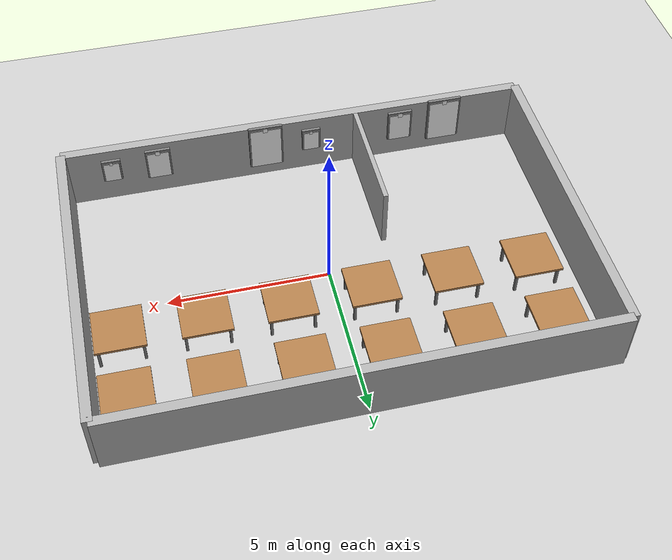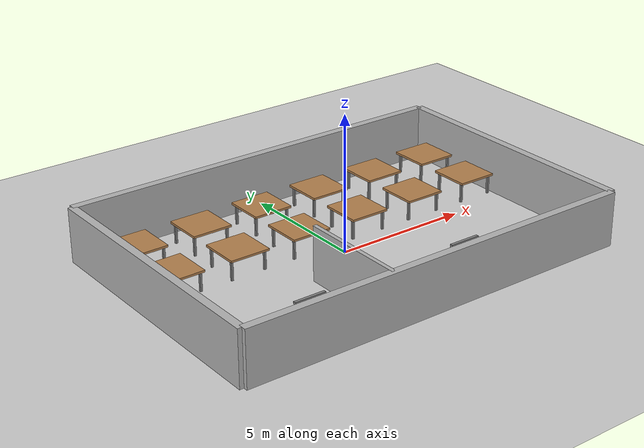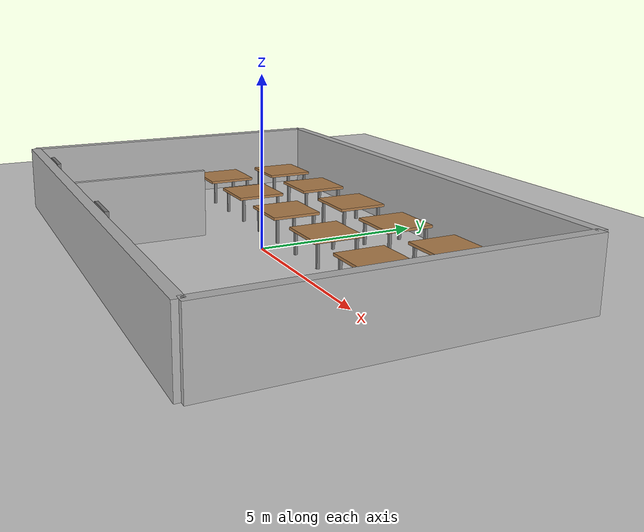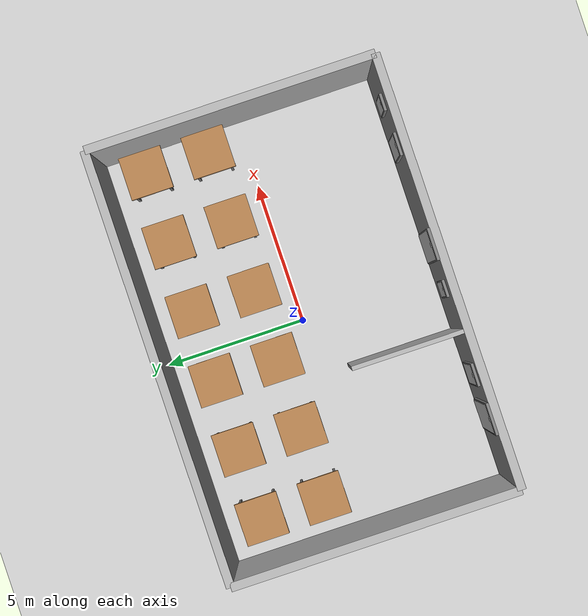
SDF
<?xml version="1.0" ?>
<sdf version="1.6">
  <world name="challenging_cafeteria">

    <!-- Sun -->
    <light type="directional" name="sun">
        <cast_shadows>true</cast_shadows>
        <pose>0 0 10 0 0 0</pose>
        <diffuse>0.8 0.8 0.8 1</diffuse>
        <direction>-0.5 0.1 -0.9</direction>
    </light>

    <scene>
      <ambient>0.4 0.4 0.4 1</ambient>
      <background>0.7 0.7 0.7 1</background>
      <shadows>true</shadows>
    </scene>

    <plugin filename="libignition-gazebo6-physics-system.so" name="ignition::gazebo::systems::Physics"></plugin>
    <plugin filename="libignition-gazebo6-sensors-system.so" name="ignition::gazebo::systems::Sensors">
        <render_engine>ogre2</render_engine>
    </plugin>
    <plugin filename="libignition-gazebo6-scene-broadcaster-system.so" name="ignition::gazebo::systems::SceneBroadcaster"></plugin>
    <plugin filename="libignition-gazebo6-user-commands-system.so" name="ignition::gazebo::systems::UserCommands"></plugin>

    <!-- Ground -->
    <model name="ground_plane">
      <static>true</static>
      <link name="link">
        <collision name="collision">
          <geometry>
            <plane>
              <normal>0 0 1</normal>
              <size>30 30</size>
            </plane>
          </geometry>
        </collision>
        <visual name="visual">
          <geometry>
            <plane>
              <normal>0 0 1</normal>
              <size>30 30</size>
            </plane>
          </geometry>
          <material>
            <ambient>0.8 0.8 0.8 1</ambient>
            <diffuse>0.8 0.8 0.8 1</diffuse>
            <specular>0.8 0.8 0.8 1</specular>
          </material>
        </visual>
      </link>
    </model>

    <!-- === WALLS === -->
    <model name="left_wall_poster_area">
      <static>true</static>
      <pose>0 -5 1 0 0 0</pose>
      <link name="wall_link">
        <collision name="collision"><geometry><box><size>15 0.3 2</size></box></geometry></collision>
        <visual name="visual"><geometry><box><size>15 0.3 2</size></box></geometry>
          <material><ambient>0.7 0.7 0.7 1</ambient></material>
        </visual>
      </link>
    </model>

    <model name="right_wall">
      <static>true</static>
      <pose>0 5 1 0 0 0</pose>
      <link name="wall_link">
        <collision name="collision"><geometry><box><size>15 0.3 2</size></box></geometry></collision>
        <visual name="visual"><geometry><box><size>15 0.3 2</size></box></geometry>
          <material><ambient>0.7 0.7 0.7 1</ambient></material>
        </visual>
      </link>
    </model>

    <model name="back_wall">
      <static>true</static>
      <pose>-7.5 0 1 0 0 1.57</pose>
      <link name="wall_link">
         <collision name="collision"><geometry><box><size>10 0.3 2</size></box></geometry></collision>
        <visual name="visual"><geometry><box><size>10 0.3 2</size></box></geometry>
          <material><ambient>0.7 0.7 0.7 1</ambient></material>
        </visual>
      </link>
    </model>

    <model name="front_wall">
      <static>true</static>
      <pose>7.5 0 1 0 0 1.57</pose>
      <link name="wall_link">
         <collision name="collision"><geometry><box><size>10 0.3 2</size></box></geometry></collision>
        <visual name="visual"><geometry><box><size>10 0.3 2</size></box></geometry>
          <material><ambient>0.7 0.7 0.7 1</ambient></material>
        </visual>
      </link>
    </model>

    <!-- === NEW: OBSTACLE WALL (Navigation Challenge) === -->
    <!-- Extends from the poster wall (y=-5) inwards to y=-1 -->
    <model name="obstacle_wall">
      <static>true</static>
      <pose>-2.0 -3.0 1 0 0 1.57</pose> <!-- Rotated 90 deg to protrude -->
      <link name="wall_link">
        <collision name="collision">
          <geometry>
            <box>
              <size>3.5 0.15 2</size> <!-- Length 4m -->
            </box>
          </geometry>
        </collision>
        <visual name="visual">
          <geometry>
            <box>
              <size>4.0 0.15 2</size>
            </box>
          </geometry>
          <material>
            <ambient>0.7 0.7 0.7 1</ambient> <!-- Slightly reddish to stand out as obstacle -->
            <diffuse>0.7 0.7 0.7 1</diffuse>
          </material>
        </visual>
      </link>
    </model>

    <!-- === TABLES GRID (1.5x1.5 Square) === -->

    <!-- ROW 1 -->
    <model name="table_row1_1">
      <static>true</static>
      <pose>-6 1.25 0 0 0 0</pose>
      <link name="link">
        <collision name="collision">
          <pose>0 0 0.4 0 0 0</pose>
          <geometry><box><size>1.5 1.5 0.8</size></box></geometry>
        </collision>
        <visual name="table_top">
          <pose>0 0 0.76 0 0 0</pose>
          <geometry><box><size>1.5 1.5 0.08</size></box></geometry>
          <material>
            <script>
              <uri>file://materials/scripts</uri>
              <uri>file://materials/textures</uri>
              <name>TableWood</name>
            </script>
          </material>
        </visual>
        <visual name="leg_fl">
          <pose>0.65 0.6 0.36 0 0 0</pose>
          <geometry><box><size>0.08 0.08 0.72</size></box></geometry>
          <material><ambient>0.4 0.4 0.4 1</ambient><diffuse>0.5 0.5 0.5 1</diffuse></material>
        </visual>
        <visual name="leg_fr">
          <pose>0.65 -0.6 0.36 0 0 0</pose>
          <geometry><box><size>0.08 0.08 0.72</size></box></geometry>
          <material><ambient>0.4 0.4 0.4 1</ambient><diffuse>0.5 0.5 0.5 1</diffuse></material>
        </visual>
        <visual name="leg_bl">
          <pose>-0.65 0.6 0.36 0 0 0</pose>
          <geometry><box><size>0.08 0.08 0.72</size></box></geometry>
          <material><ambient>0.4 0.4 0.4 1</ambient><diffuse>0.5 0.5 0.5 1</diffuse></material>
        </visual>
        <visual name="leg_br">
          <pose>-0.65 -0.6 0.36 0 0 0</pose>
          <geometry><box><size>0.08 0.08 0.72</size></box></geometry>
          <material><ambient>0.4 0.4 0.4 1</ambient><diffuse>0.5 0.5 0.5 1</diffuse></material>
        </visual>
      </link>
    </model>

    <model name="table_row1_2">
      <static>true</static>
      <pose>-3.5 1.25 0 0 0 0</pose>
      <link name="link">
        <collision name="collision">
          <pose>0 0 0.4 0 0 0</pose>
          <geometry><box><size>1.5 1.5 0.8</size></box></geometry>
        </collision>
        <visual name="table_top">
          <pose>0 0 0.76 0 0 0</pose>
          <geometry><box><size>1.5 1.5 0.08</size></box></geometry>
          <material>
            <script>
              <uri>file://materials/scripts</uri>
              <uri>file://materials/textures</uri>
              <name>TableWood</name>
            </script>
          </material>
        </visual>
        <visual name="leg_fl">
          <pose>0.65 0.6 0.36 0 0 0</pose>
          <geometry><box><size>0.08 0.08 0.72</size></box></geometry>
          <material><ambient>0.4 0.4 0.4 1</ambient><diffuse>0.5 0.5 0.5 1</diffuse></material>
        </visual>
        <visual name="leg_fr">
          <pose>0.65 -0.6 0.36 0 0 0</pose>
          <geometry><box><size>0.08 0.08 0.72</size></box></geometry>
          <material><ambient>0.4 0.4 0.4 1</ambient><diffuse>0.5 0.5 0.5 1</diffuse></material>
        </visual>
        <visual name="leg_bl">
          <pose>-0.65 0.6 0.36 0 0 0</pose>
          <geometry><box><size>0.08 0.08 0.72</size></box></geometry>
          <material><ambient>0.4 0.4 0.4 1</ambient><diffuse>0.5 0.5 0.5 1</diffuse></material>
        </visual>
        <visual name="leg_br">
          <pose>-0.65 -0.6 0.36 0 0 0</pose>
          <geometry><box><size>0.08 0.08 0.72</size></box></geometry>
          <material><ambient>0.4 0.4 0.4 1</ambient><diffuse>0.5 0.5 0.5 1</diffuse></material>
        </visual>
      </link>
    </model>

    <model name="table_row1_3">
      <static>true</static>
      <pose>-1 1.25 0 0 0 0</pose>
      <link name="link">
        <collision name="collision">
          <pose>0 0 0.4 0 0 0</pose>
          <geometry><box><size>1.5 1.5 0.8</size></box></geometry>
        </collision>
        <visual name="table_top">
          <pose>0 0 0.76 0 0 0</pose>
          <geometry><box><size>1.5 1.5 0.08</size></box></geometry>
          <material>
            <script>
              <uri>file://materials/scripts</uri>
              <uri>file://materials/textures</uri>
              <name>TableWood</name>
            </script>
          </material>
        </visual>
        <visual name="leg_fl">
          <pose>0.65 0.6 0.36 0 0 0</pose>
          <geometry><box><size>0.08 0.08 0.72</size></box></geometry>
          <material><ambient>0.4 0.4 0.4 1</ambient><diffuse>0.5 0.5 0.5 1</diffuse></material>
        </visual>
        <visual name="leg_fr">
          <pose>0.65 -0.6 0.36 0 0 0</pose>
          <geometry><box><size>0.08 0.08 0.72</size></box></geometry>
          <material><ambient>0.4 0.4 0.4 1</ambient><diffuse>0.5 0.5 0.5 1</diffuse></material>
        </visual>
        <visual name="leg_bl">
          <pose>-0.65 0.6 0.36 0 0 0</pose>
          <geometry><box><size>0.08 0.08 0.72</size></box></geometry>
          <material><ambient>0.4 0.4 0.4 1</ambient><diffuse>0.5 0.5 0.5 1</diffuse></material>
        </visual>
        <visual name="leg_br">
          <pose>-0.65 -0.6 0.36 0 0 0</pose>
          <geometry><box><size>0.08 0.08 0.72</size></box></geometry>
          <material><ambient>0.4 0.4 0.4 1</ambient><diffuse>0.5 0.5 0.5 1</diffuse></material>
        </visual>
      </link>
    </model>

    <model name="table_row1_4">
      <static>true</static>
      <pose>1.5 1.25 0 0 0 0</pose>
      <link name="link">
        <collision name="collision">
          <pose>0 0 0.4 0 0 0</pose>
          <geometry><box><size>1.5 1.5 0.8</size></box></geometry>
        </collision>
        <visual name="table_top">
          <pose>0 0 0.76 0 0 0</pose>
          <geometry><box><size>1.5 1.5 0.08</size></box></geometry>
          <material>
            <script>
              <uri>file://materials/scripts</uri>
              <uri>file://materials/textures</uri>
              <name>TableWood</name>
            </script>
          </material>
        </visual>
        <visual name="leg_fl">
          <pose>0.65 0.6 0.36 0 0 0</pose>
          <geometry><box><size>0.08 0.08 0.72</size></box></geometry>
          <material><ambient>0.4 0.4 0.4 1</ambient><diffuse>0.5 0.5 0.5 1</diffuse></material>
        </visual>
        <visual name="leg_fr">
          <pose>0.65 -0.6 0.36 0 0 0</pose>
          <geometry><box><size>0.08 0.08 0.72</size></box></geometry>
          <material><ambient>0.4 0.4 0.4 1</ambient><diffuse>0.5 0.5 0.5 1</diffuse></material>
        </visual>
        <visual name="leg_bl">
          <pose>-0.65 0.6 0.36 0 0 0</pose>
          <geometry><box><size>0.08 0.08 0.72</size></box></geometry>
          <material><ambient>0.4 0.4 0.4 1</ambient><diffuse>0.5 0.5 0.5 1</diffuse></material>
        </visual>
        <visual name="leg_br">
          <pose>-0.65 -0.6 0.36 0 0 0</pose>
          <geometry><box><size>0.08 0.08 0.72</size></box></geometry>
          <material><ambient>0.4 0.4 0.4 1</ambient><diffuse>0.5 0.5 0.5 1</diffuse></material>
        </visual>
      </link>
    </model>

    <model name="table_row1_5">
      <static>true</static>
      <pose>4 1.25 0 0 0 0</pose>
      <link name="link">
        <collision name="collision">
          <pose>0 0 0.4 0 0 0</pose>
          <geometry><box><size>1.5 1.5 0.8</size></box></geometry>
        </collision>
        <visual name="table_top">
          <pose>0 0 0.76 0 0 0</pose>
          <geometry><box><size>1.5 1.5 0.08</size></box></geometry>
          <material>
            <script>
              <uri>file://materials/scripts</uri>
              <uri>file://materials/textures</uri>
              <name>TableWood</name>
            </script>
          </material>
        </visual>
        <visual name="leg_fl">
          <pose>0.65 0.6 0.36 0 0 0</pose>
          <geometry><box><size>0.08 0.08 0.72</size></box></geometry>
          <material><ambient>0.4 0.4 0.4 1</ambient><diffuse>0.5 0.5 0.5 1</diffuse></material>
        </visual>
        <visual name="leg_fr">
          <pose>0.65 -0.6 0.36 0 0 0</pose>
          <geometry><box><size>0.08 0.08 0.72</size></box></geometry>
          <material><ambient>0.4 0.4 0.4 1</ambient><diffuse>0.5 0.5 0.5 1</diffuse></material>
        </visual>
        <visual name="leg_bl">
          <pose>-0.65 0.6 0.36 0 0 0</pose>
          <geometry><box><size>0.08 0.08 0.72</size></box></geometry>
          <material><ambient>0.4 0.4 0.4 1</ambient><diffuse>0.5 0.5 0.5 1</diffuse></material>
        </visual>
        <visual name="leg_br">
          <pose>-0.65 -0.6 0.36 0 0 0</pose>
          <geometry><box><size>0.08 0.08 0.72</size></box></geometry>
          <material><ambient>0.4 0.4 0.4 1</ambient><diffuse>0.5 0.5 0.5 1</diffuse></material>
        </visual>
      </link>
    </model>

    <model name="table_row1_6">
      <static>true</static>
      <pose>6.5 1.25 0 0 0 0</pose>
      <link name="link">
        <collision name="collision">
          <pose>0 0 0.4 0 0 0</pose>
          <geometry><box><size>1.5 1.5 0.8</size></box></geometry>
        </collision>
        <visual name="table_top">
          <pose>0 0 0.76 0 0 0</pose>
          <geometry><box><size>1.5 1.5 0.08</size></box></geometry>
          <material>
            <script>
              <uri>file://materials/scripts</uri>
              <uri>file://materials/textures</uri>
              <name>TableWood</name>
            </script>
          </material>
        </visual>
        <visual name="leg_fl">
          <pose>0.65 0.6 0.36 0 0 0</pose>
          <geometry><box><size>0.08 0.08 0.72</size></box></geometry>
          <material><ambient>0.4 0.4 0.4 1</ambient><diffuse>0.5 0.5 0.5 1</diffuse></material>
        </visual>
        <visual name="leg_fr">
          <pose>0.65 -0.6 0.36 0 0 0</pose>
          <geometry><box><size>0.08 0.08 0.72</size></box></geometry>
          <material><ambient>0.4 0.4 0.4 1</ambient><diffuse>0.5 0.5 0.5 1</diffuse></material>
        </visual>
        <visual name="leg_bl">
          <pose>-0.65 0.6 0.36 0 0 0</pose>
          <geometry><box><size>0.08 0.08 0.72</size></box></geometry>
          <material><ambient>0.4 0.4 0.4 1</ambient><diffuse>0.5 0.5 0.5 1</diffuse></material>
        </visual>
        <visual name="leg_br">
          <pose>-0.65 -0.6 0.36 0 0 0</pose>
          <geometry><box><size>0.08 0.08 0.72</size></box></geometry>
          <material><ambient>0.4 0.4 0.4 1</ambient><diffuse>0.5 0.5 0.5 1</diffuse></material>
        </visual>
      </link>
    </model>

    <!-- ROW 2 -->
    <model name="table_row2_1">
      <static>true</static>
      <pose>-6 3.5 0 0 0 0</pose>
      <link name="link">
        <collision name="collision">
          <pose>0 0 0.4 0 0 0</pose>
          <geometry><box><size>1.5 1.5 0.8</size></box></geometry>
        </collision>
        <visual name="table_top">
          <pose>0 0 0.76 0 0 0</pose>
          <geometry><box><size>1.5 1.5 0.08</size></box></geometry>
          <material>
            <script>
              <uri>file://materials/scripts</uri>
              <uri>file://materials/textures</uri>
              <name>TableWood</name>
            </script>
          </material>
        </visual>
        <visual name="leg_fl">
          <pose>0.65 0.6 0.36 0 0 0</pose>
          <geometry><box><size>0.08 0.08 0.72</size></box></geometry>
          <material><ambient>0.4 0.4 0.4 1</ambient><diffuse>0.5 0.5 0.5 1</diffuse></material>
        </visual>
        <visual name="leg_fr">
          <pose>0.65 -0.6 0.36 0 0 0</pose>
          <geometry><box><size>0.08 0.08 0.72</size></box></geometry>
          <material><ambient>0.4 0.4 0.4 1</ambient><diffuse>0.5 0.5 0.5 1</diffuse></material>
        </visual>
        <visual name="leg_bl">
          <pose>-0.65 0.6 0.36 0 0 0</pose>
          <geometry><box><size>0.08 0.08 0.72</size></box></geometry>
          <material><ambient>0.4 0.4 0.4 1</ambient><diffuse>0.5 0.5 0.5 1</diffuse></material>
        </visual>
        <visual name="leg_br">
          <pose>-0.65 -0.6 0.36 0 0 0</pose>
          <geometry><box><size>0.08 0.08 0.72</size></box></geometry>
          <material><ambient>0.4 0.4 0.4 1</ambient><diffuse>0.5 0.5 0.5 1</diffuse></material>
        </visual>
      </link>
    </model>

    <model name="table_row2_2">
      <static>true</static>
      <pose>-3.5 3.5 0 0 0 0</pose>
      <link name="link">
        <collision name="collision">
          <pose>0 0 0.4 0 0 0</pose>
          <geometry><box><size>1.5 1.5 0.8</size></box></geometry>
        </collision>
        <visual name="table_top">
          <pose>0 0 0.76 0 0 0</pose>
          <geometry><box><size>1.5 1.5 0.08</size></box></geometry>
          <material>
            <script>
              <uri>file://materials/scripts</uri>
              <uri>file://materials/textures</uri>
              <name>TableWood</name>
            </script>
          </material>
        </visual>
        <visual name="leg_fl">
          <pose>0.65 0.6 0.36 0 0 0</pose>
          <geometry><box><size>0.08 0.08 0.72</size></box></geometry>
          <material><ambient>0.4 0.4 0.4 1</ambient><diffuse>0.5 0.5 0.5 1</diffuse></material>
        </visual>
        <visual name="leg_fr">
          <pose>0.65 -0.6 0.36 0 0 0</pose>
          <geometry><box><size>0.08 0.08 0.72</size></box></geometry>
          <material><ambient>0.4 0.4 0.4 1</ambient><diffuse>0.5 0.5 0.5 1</diffuse></material>
        </visual>
        <visual name="leg_bl">
          <pose>-0.65 0.6 0.36 0 0 0</pose>
          <geometry><box><size>0.08 0.08 0.72</size></box></geometry>
          <material><ambient>0.4 0.4 0.4 1</ambient><diffuse>0.5 0.5 0.5 1</diffuse></material>
        </visual>
        <visual name="leg_br">
          <pose>-0.65 -0.6 0.36 0 0 0</pose>
          <geometry><box><size>0.08 0.08 0.72</size></box></geometry>
          <material><ambient>0.4 0.4 0.4 1</ambient><diffuse>0.5 0.5 0.5 1</diffuse></material>
        </visual>
      </link>
    </model>

    <model name="table_row2_3">
      <static>true</static>
      <pose>-1 3.5 0 0 0 0</pose>
      <link name="link">
        <collision name="collision">
          <pose>0 0 0.4 0 0 0</pose>
          <geometry><box><size>1.5 1.5 0.8</size></box></geometry>
        </collision>
        <visual name="table_top">
          <pose>0 0 0.76 0 0 0</pose>
          <geometry><box><size>1.5 1.5 0.08</size></box></geometry>
          <material>
            <script>
              <uri>file://materials/scripts</uri>
              <uri>file://materials/textures</uri>
              <name>TableWood</name>
            </script>
          </material>
        </visual>
        <visual name="leg_fl">
          <pose>0.65 0.6 0.36 0 0 0</pose>
          <geometry><box><size>0.08 0.08 0.72</size></box></geometry>
          <material><ambient>0.4 0.4 0.4 1</ambient><diffuse>0.5 0.5 0.5 1</diffuse></material>
        </visual>
        <visual name="leg_fr">
          <pose>0.65 -0.6 0.36 0 0 0</pose>
          <geometry><box><size>0.08 0.08 0.72</size></box></geometry>
          <material><ambient>0.4 0.4 0.4 1</ambient><diffuse>0.5 0.5 0.5 1</diffuse></material>
        </visual>
        <visual name="leg_bl">
          <pose>-0.65 0.6 0.36 0 0 0</pose>
          <geometry><box><size>0.08 0.08 0.72</size></box></geometry>
          <material><ambient>0.4 0.4 0.4 1</ambient><diffuse>0.5 0.5 0.5 1</diffuse></material>
        </visual>
        <visual name="leg_br">
          <pose>-0.65 -0.6 0.36 0 0 0</pose>
          <geometry><box><size>0.08 0.08 0.72</size></box></geometry>
          <material><ambient>0.4 0.4 0.4 1</ambient><diffuse>0.5 0.5 0.5 1</diffuse></material>
        </visual>
      </link>
    </model>

    <model name="table_row2_4">
      <static>true</static>
      <pose>1.5 3.5 0 0 0 0</pose>
      <link name="link">
        <collision name="collision">
          <pose>0 0 0.4 0 0 0</pose>
          <geometry><box><size>1.5 1.5 0.8</size></box></geometry>
        </collision>
        <visual name="table_top">
          <pose>0 0 0.76 0 0 0</pose>
          <geometry><box><size>1.5 1.5 0.08</size></box></geometry>
          <material>
            <script>
              <uri>file://materials/scripts</uri>
              <uri>file://materials/textures</uri>
              <name>TableWood</name>
            </script>
          </material>
        </visual>
        <visual name="leg_fl">
          <pose>0.65 0.6 0.36 0 0 0</pose>
          <geometry><box><size>0.08 0.08 0.72</size></box></geometry>
          <material><ambient>0.4 0.4 0.4 1</ambient><diffuse>0.5 0.5 0.5 1</diffuse></material>
        </visual>
        <visual name="leg_fr">
          <pose>0.65 -0.6 0.36 0 0 0</pose>
          <geometry><box><size>0.08 0.08 0.72</size></box></geometry>
          <material><ambient>0.4 0.4 0.4 1</ambient><diffuse>0.5 0.5 0.5 1</diffuse></material>
        </visual>
        <visual name="leg_bl">
          <pose>-0.65 0.6 0.36 0 0 0</pose>
          <geometry><box><size>0.08 0.08 0.72</size></box></geometry>
          <material><ambient>0.4 0.4 0.4 1</ambient><diffuse>0.5 0.5 0.5 1</diffuse></material>
        </visual>
        <visual name="leg_br">
          <pose>-0.65 -0.6 0.36 0 0 0</pose>
          <geometry><box><size>0.08 0.08 0.72</size></box></geometry>
          <material><ambient>0.4 0.4 0.4 1</ambient><diffuse>0.5 0.5 0.5 1</diffuse></material>
        </visual>
      </link>
    </model>

    <model name="table_row2_5">
      <static>true</static>
      <pose>4 3.5 0 0 0 0</pose>
      <link name="link">
        <collision name="collision">
          <pose>0 0 0.4 0 0 0</pose>
          <geometry><box><size>1.5 1.5 0.8</size></box></geometry>
        </collision>
        <visual name="table_top">
          <pose>0 0 0.76 0 0 0</pose>
          <geometry><box><size>1.5 1.5 0.08</size></box></geometry>
          <material>
            <script>
              <uri>file://materials/scripts</uri>
              <uri>file://materials/textures</uri>
              <name>TableWood</name>
            </script>
          </material>
        </visual>
        <visual name="leg_fl">
          <pose>0.65 0.6 0.36 0 0 0</pose>
          <geometry><box><size>0.08 0.08 0.72</size></box></geometry>
          <material><ambient>0.4 0.4 0.4 1</ambient><diffuse>0.5 0.5 0.5 1</diffuse></material>
        </visual>
        <visual name="leg_fr">
          <pose>0.65 -0.6 0.36 0 0 0</pose>
          <geometry><box><size>0.08 0.08 0.72</size></box></geometry>
          <material><ambient>0.4 0.4 0.4 1</ambient><diffuse>0.5 0.5 0.5 1</diffuse></material>
        </visual>
        <visual name="leg_bl">
          <pose>-0.65 0.6 0.36 0 0 0</pose>
          <geometry><box><size>0.08 0.08 0.72</size></box></geometry>
          <material><ambient>0.4 0.4 0.4 1</ambient><diffuse>0.5 0.5 0.5 1</diffuse></material>
        </visual>
        <visual name="leg_br">
          <pose>-0.65 -0.6 0.36 0 0 0</pose>
          <geometry><box><size>0.08 0.08 0.72</size></box></geometry>
          <material><ambient>0.4 0.4 0.4 1</ambient><diffuse>0.5 0.5 0.5 1</diffuse></material>
        </visual>
      </link>
    </model>

    <model name="table_row2_6">
      <static>true</static>
      <pose>6.5 3.5 0 0 0 0</pose>
      <link name="link">
        <collision name="collision">
          <pose>0 0 0.4 0 0 0</pose>
          <geometry><box><size>1.5 1.5 0.8</size></box></geometry>
        </collision>
        <visual name="table_top">
          <pose>0 0 0.76 0 0 0</pose>
          <geometry><box><size>1.5 1.5 0.08</size></box></geometry>
          <material>
            <script>
              <uri>file://materials/scripts</uri>
              <uri>file://materials/textures</uri>
              <name>TableWood</name>
            </script>
          </material>
        </visual>
        <visual name="leg_fl">
          <pose>0.65 0.6 0.36 0 0 0</pose>
          <geometry><box><size>0.08 0.08 0.72</size></box></geometry>
          <material><ambient>0.4 0.4 0.4 1</ambient><diffuse>0.5 0.5 0.5 1</diffuse></material>
        </visual>
        <visual name="leg_fr">
          <pose>0.65 -0.6 0.36 0 0 0</pose>
          <geometry><box><size>0.08 0.08 0.72</size></box></geometry>
          <material><ambient>0.4 0.4 0.4 1</ambient><diffuse>0.5 0.5 0.5 1</diffuse></material>
        </visual>
        <visual name="leg_bl">
          <pose>-0.65 0.6 0.36 0 0 0</pose>
          <geometry><box><size>0.08 0.08 0.72</size></box></geometry>
          <material><ambient>0.4 0.4 0.4 1</ambient><diffuse>0.5 0.5 0.5 1</diffuse></material>
        </visual>
        <visual name="leg_br">
          <pose>-0.65 -0.6 0.36 0 0 0</pose>
          <geometry><box><size>0.08 0.08 0.72</size></box></geometry>
          <material><ambient>0.4 0.4 0.4 1</ambient><diffuse>0.5 0.5 0.5 1</diffuse></material>
        </visual>
      </link>
    </model>

    <!-- === POSTERS === -->
    <include>
      <uri>model://poster_board_1</uri>
      <name>noticeboard_1</name>
      <pose>-5 -4.8 1.25 0 0 1.57</pose>
    </include>
    <include>
      <uri>model://poster_board_2</uri>
      <name>noticeboard_2</name>
      <pose>-3.5 -4.8 1.25 0 0 1.57</pose>
    </include>

    <include>
      <uri>model://poster_board_3</uri>
      <name>noticeboard_3</name>
      <pose>-0.5 -4.8 1.25 0 0 1.57</pose>
    </include>
    <include>
      <uri>model://poster_board_4</uri>
      <name>noticeboard_4</name>
      <pose>1 -4.8 1.25 0 0 1.57</pose>
    </include>

    <include>
      <uri>model://poster_board_5</uri>
      <name>noticeboard_5</name>
      <pose>4.5 -4.8 1.25 0 0 1.57</pose>
    </include>
    <include>
      <uri>model://poster_board_6</uri>
      <name>noticeboard_6</name>
      <pose>6 -4.8 1.25 0 0 1.57</pose>
    </include>

  </world>
</sdf>

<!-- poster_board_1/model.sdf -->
<sdf version="1.8">
  <model name="poster_board">
    <static>true</static>
    <link name="link">
      <!-- Frame (Large: 1.1 width x 1.6 height) -->
      <visual name="frame">
        <geometry><box><size>0.1 1.1 1.6</size></box></geometry>
        <material><ambient>0.5 0.5 0.5 1</ambient><diffuse>0.5 0.5 0.5 1</diffuse></material>
      </visual>

      <!-- Poster Content (1.0 x 1.5) -->
      <visual name="poster">
        <pose>0.06 0 -0.05 0 0 0</pose>
        <geometry><box><size>0.01 1.0 1.5</size></box></geometry>
        <material>
          <ambient>1 1 1 1</ambient><diffuse>1 1 1 1</diffuse>
          <pbr><metal><albedo_map>materials/textures/poster.jpeg</albedo_map></metal></pbr>
        </material>
      </visual>

      <!-- ArUco Marker (Top Edge) -->
      <visual name="aruco_marker">
        <pose>0.065 0 0.7 0 0 0</pose>
        <geometry><box><size>0.01 0.15 0.15</size></box></geometry>
        <material>
          <ambient>1 1 1 1</ambient><diffuse>1 1 1 1</diffuse>
          <pbr><metal><albedo_map>materials/textures/aruco_marker.png</albedo_map></metal></pbr>
        </material>
      </visual>

      <!-- Collision -->
       <collision name="collision">
         <geometry><box><size>0.1 1.1 1.6</size></box></geometry>
      </collision>
    </link>
  </model>
</sdf>

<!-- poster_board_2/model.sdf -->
<sdf version="1.8">
  <model name="poster_board">
    <static>true</static>
    <link name="link">
      <!-- Frame (Medium: 0.8 width x 1.1 height) -->
      <visual name="frame">
        <geometry><box><size>0.1 0.8 1.1</size></box></geometry>
        <material><ambient>0.5 0.5 0.5 1</ambient><diffuse>0.5 0.5 0.5 1</diffuse></material>
      </visual>

      <!-- Poster Content (0.7 x 1.0) -->
      <visual name="poster">
        <pose>0.06 0 -0.05 0 0 0</pose>
        <geometry><box><size>0.01 0.7 1.0</size></box></geometry>
        <material>
          <ambient>1 1 1 1</ambient><diffuse>1 1 1 1</diffuse>
          <pbr><metal><albedo_map>materials/textures/poster2.jpeg</albedo_map></metal></pbr>
        </material>
      </visual>

      <!-- ArUco Marker (Top Edge) -->
      <visual name="aruco_marker">
        <pose>0.065 0 0.45 0 0 0</pose>
        <geometry><box><size>0.01 0.15 0.15</size></box></geometry>
        <material>
          <ambient>1 1 1 1</ambient><diffuse>1 1 1 1</diffuse>
          <pbr><metal><albedo_map>materials/textures/aruco_marker.png</albedo_map></metal></pbr>
        </material>
      </visual>

       <collision name="collision">
         <geometry><box><size>0.1 0.8 1.1</size></box></geometry>
      </collision>
    </link>
  </model>
</sdf>

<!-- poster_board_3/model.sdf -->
<sdf version="1.8">
  <model name="poster_board_3">
    <static>true</static>
    <link name="link">
      <!-- Frame (Small: 0.6 width x 0.8 height) -->
      <visual name="frame">
        <geometry><box><size>0.1 0.6 0.8</size></box></geometry>
        <material><ambient>0.5 0.5 0.5 1</ambient><diffuse>0.5 0.5 0.5 1</diffuse></material>
      </visual>

      <!-- Poster Content (0.5 x 0.7) -->
      <visual name="poster">
        <pose>0.06 0 -0.05 0 0 0</pose>
        <geometry><box><size>0.01 0.5 0.7</size></box></geometry>
        <material>
          <ambient>1 1 1 1</ambient><diffuse>1 1 1 1</diffuse>
          <pbr><metal><albedo_map>materials/textures/poster3.jpeg</albedo_map></metal></pbr>
        </material>
      </visual>

      <!-- ArUco Marker (Top Edge) -->
      <visual name="aruco_marker">
        <pose>0.065 0 0.3 0 0 0</pose>
        <geometry><box><size>0.01 0.1 0.1</size></box></geometry>
        <material>
          <ambient>1 1 1 1</ambient><diffuse>1 1 1 1</diffuse>
          <pbr><metal><albedo_map>materials/textures/aruco_marker.png</albedo_map></metal></pbr>
        </material>
      </visual>

       <collision name="collision">
         <geometry><box><size>0.1 0.6 0.8</size></box></geometry>
      </collision>
    </link>
  </model>
</sdf>

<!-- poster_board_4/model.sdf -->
<sdf version="1.8">
  <model name="poster_board_4">
    <static>true</static>
    <link name="link">
      <!-- Frame (Large: 1.1 width x 1.6 height) -->
      <visual name="frame">
        <geometry><box><size>0.1 1.1 1.6</size></box></geometry>
        <material><ambient>0.5 0.5 0.5 1</ambient><diffuse>0.5 0.5 0.5 1</diffuse></material>
      </visual>

      <!-- Poster Content (1.0 x 1.5) -->
      <visual name="poster">
        <pose>0.06 0 -0.05 0 0 0</pose>
        <geometry><box><size>0.01 1.0 1.5</size></box></geometry>
        <material>
          <ambient>1 1 1 1</ambient><diffuse>1 1 1 1</diffuse>
          <pbr><metal><albedo_map>materials/textures/poster4.jpeg</albedo_map></metal></pbr>
        </material>
      </visual>

      <!-- ArUco Marker (Top Edge) -->
      <visual name="aruco_marker">
        <pose>0.065 0 0.7 0 0 0</pose>
        <geometry><box><size>0.01 0.15 0.15</size></box></geometry>
        <material>
          <ambient>1 1 1 1</ambient><diffuse>1 1 1 1</diffuse>
          <pbr><metal><albedo_map>materials/textures/aruco_marker.png</albedo_map></metal></pbr>
        </material>
      </visual>

       <collision name="collision">
         <geometry><box><size>0.1 1.1 1.6</size></box></geometry>
      </collision>
    </link>
  </model>
</sdf>

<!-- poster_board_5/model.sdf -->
<sdf version="1.8">
  <model name="poster_board_5">
    <static>true</static>
    <link name="link">
      <!-- Frame (Medium: 0.8 width x 1.1 height) -->
      <visual name="frame">
        <geometry><box><size>0.1 0.8 1.1</size></box></geometry>
        <material><ambient>0.5 0.5 0.5 1</ambient><diffuse>0.5 0.5 0.5 1</diffuse></material>
      </visual>

      <!-- Poster Content (0.7 x 1.0) -->
      <visual name="poster">
        <pose>0.06 0 -0.05 0 0 0</pose>
        <geometry><box><size>0.01 0.7 1.0</size></box></geometry>
        <material>
          <ambient>1 1 1 1</ambient><diffuse>1 1 1 1</diffuse>
          <pbr><metal><albedo_map>materials/textures/poster5.jpeg</albedo_map></metal></pbr>
        </material>
      </visual>

      <!-- ArUco Marker (Top Edge) -->
      <visual name="aruco_marker">
        <pose>0.065 0 0.45 0 0 0</pose>
        <geometry><box><size>0.01 0.15 0.15</size></box></geometry>
        <material>
          <ambient>1 1 1 1</ambient><diffuse>1 1 1 1</diffuse>
          <pbr><metal><albedo_map>materials/textures/aruco_marker.png</albedo_map></metal></pbr>
        </material>
      </visual>

       <collision name="collision">
         <geometry><box><size>0.1 0.8 1.1</size></box></geometry>
      </collision>
    </link>
  </model>
</sdf>

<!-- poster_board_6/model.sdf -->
<sdf version="1.8">
  <model name="poster_board_6">
    <static>true</static>
    <link name="link">
      <!-- Frame (Small: 0.6 width x 0.8 height) -->
      <visual name="frame">
        <geometry><box><size>0.1 0.6 0.8</size></box></geometry>
        <material><ambient>0.5 0.5 0.5 1</ambient><diffuse>0.5 0.5 0.5 1</diffuse></material>
      </visual>

      <!-- Poster Content (0.5 x 0.7) -->
      <visual name="poster">
        <pose>0.06 0 -0.05 0 0 0</pose>
        <geometry><box><size>0.01 0.5 0.7</size></box></geometry>
        <material>
          <ambient>1 1 1 1</ambient><diffuse>1 1 1 1</diffuse>
          <pbr><metal><albedo_map>materials/textures/poster6.jpeg</albedo_map></metal></pbr>
        </material>
      </visual>

      <!-- ArUco Marker (Top Edge) -->
      <visual name="aruco_marker">
        <pose>0.065 0 0.3 0 0 0</pose>
        <geometry><box><size>0.01 0.1 0.1</size></box></geometry>
        <material>
          <ambient>1 1 1 1</ambient><diffuse>1 1 1 1</diffuse>
          <pbr><metal><albedo_map>materials/textures/aruco_marker.png</albedo_map></metal></pbr>
        </material>
      </visual>

       <collision name="collision">
         <geometry><box><size>0.1 0.6 0.8</size></box></geometry>
      </collision>
    </link>
  </model>
</sdf>
